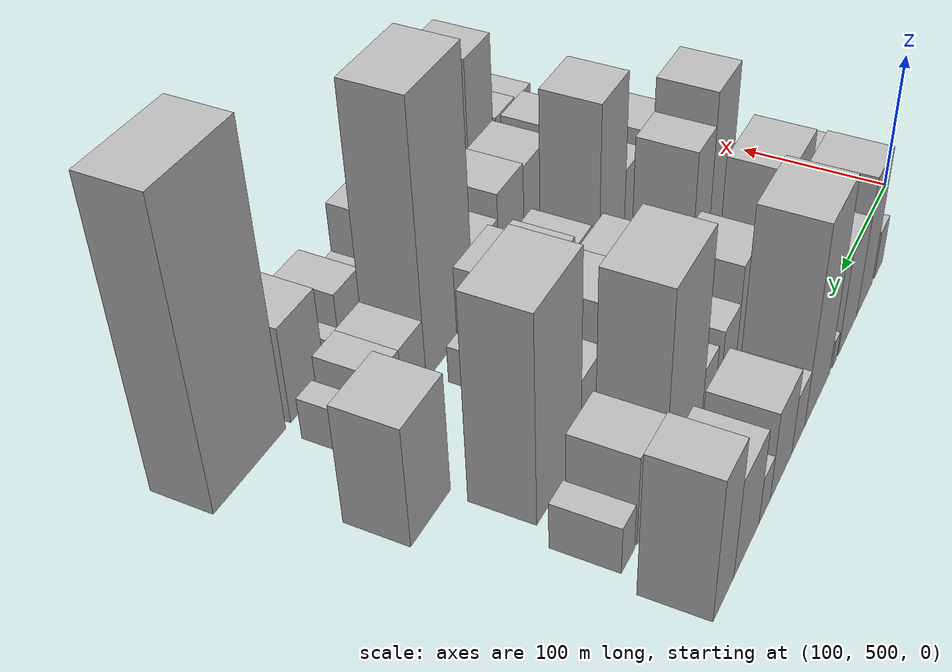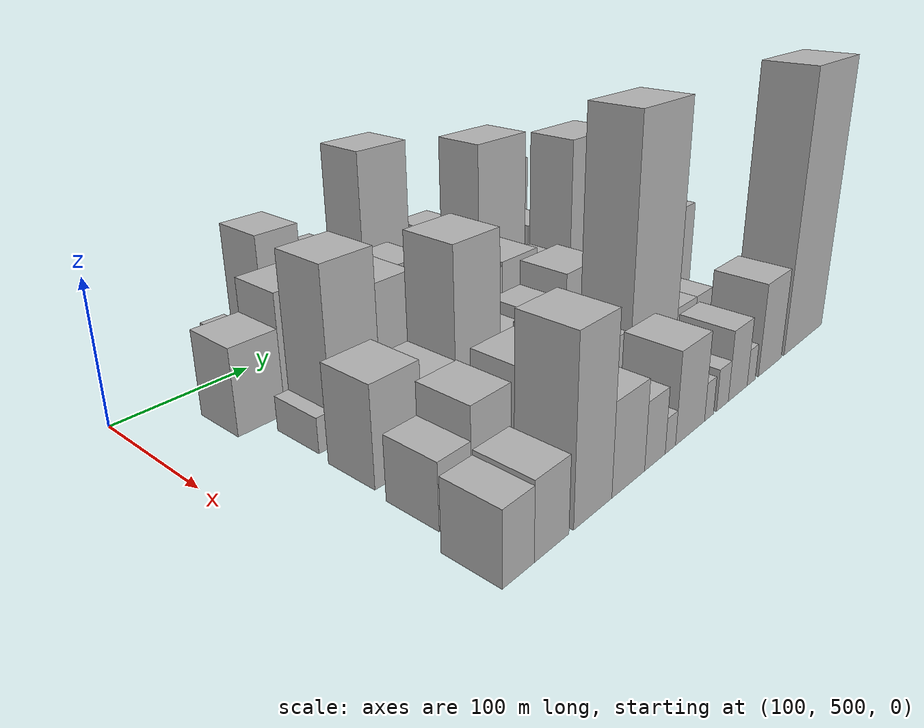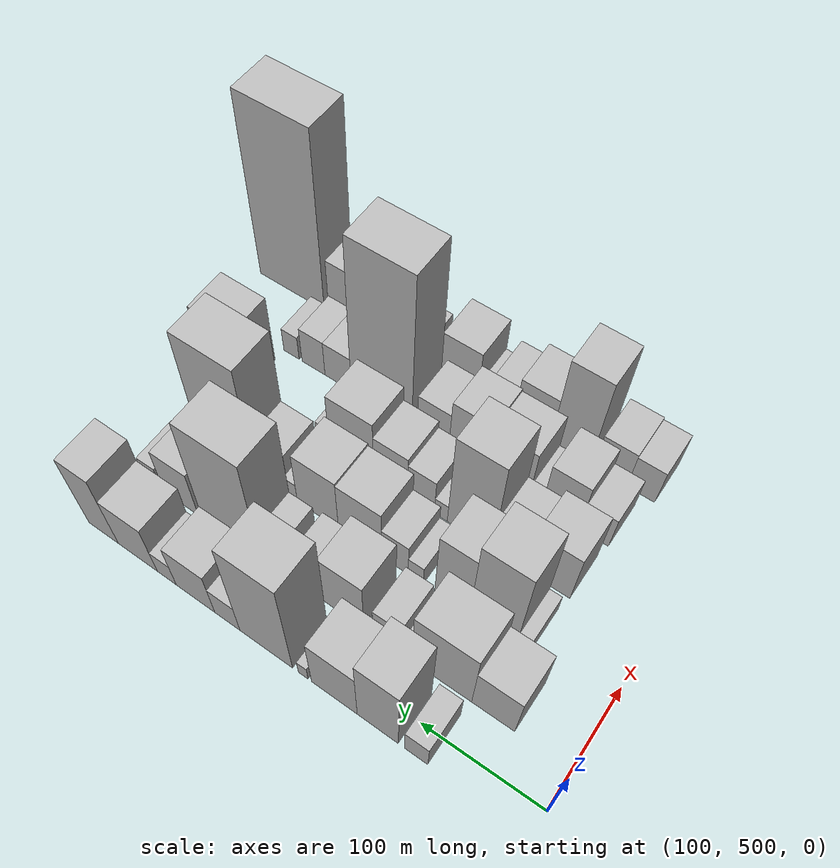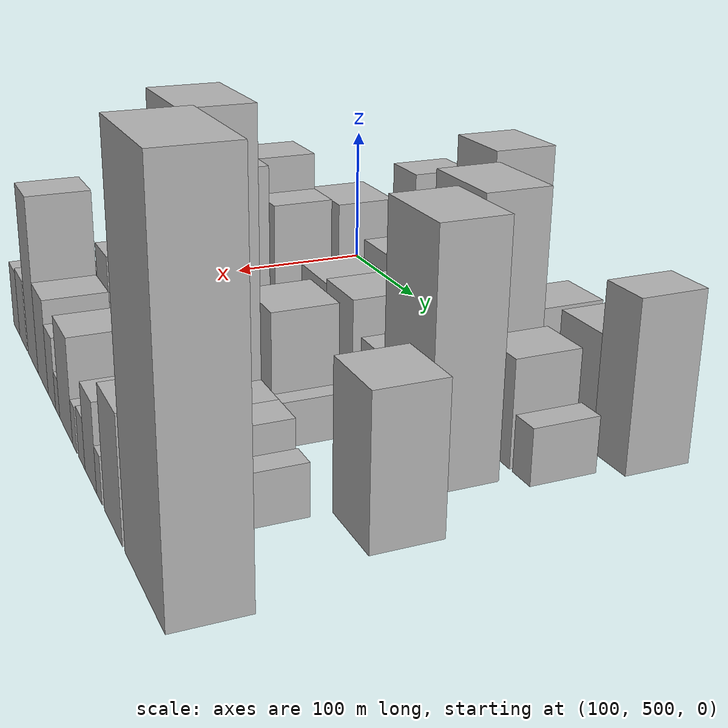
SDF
<sdf version="1.6">
 <world name="default">
  <model name="building_44">
   <static>1</static>
   <pose>100.0000 590.0059 0 0.000000 0.000000 0.000000</pose>
   <link name="link">
    <pose>0 0 18.00 0 0 0</pose>
    <collision name="collision"><geometry><box><size>40.0000 18.9711 36.0000</size></box></geometry></collision>
    <visual name="visual">
     <cast_shadows>0</cast_shadows>
     <geometry><box><size>40.0000 18.9711 36.0000</size></box></geometry>
     <material>
      <script>
       <uri>model://HANNAS_wall/materials/scripts</uri>
       <uri>model://HANNAS_wall/materials/textures</uri>
       <name>vrc/HANNAS_wall</name>
      </script>
     </material>
    </visual>
   </link>
  </model>
  <model name="building_45">
   <static>1</static>
   <pose>100.0000 621.5701 0 0.000000 0.000000 0.000000</pose>
   <link name="link">
    <pose>0 0 51.00 0 0 0</pose>
    <collision name="collision"><geometry><box><size>40.0000 34.1574 102.0000</size></box></geometry></collision>
    <visual name="visual">
     <cast_shadows>0</cast_shadows>
     <geometry><box><size>40.0000 34.1574 102.0000</size></box></geometry>
     <material>
      <script>
       <uri>model://HANNAS_wall/materials/scripts</uri>
       <uri>model://HANNAS_wall/materials/textures</uri>
       <name>vrc/HANNAS_wall</name>
      </script>
     </material>
    </visual>
   </link>
  </model>
  <model name="building_46">
   <static>1</static>
   <pose>100.0000 658.1982 0 0.000000 0.000000 0.000000</pose>
   <link name="link">
    <pose>0 0 37.50 0 0 0</pose>
    <collision name="collision"><geometry><box><size>40.0000 39.0986 75.0000</size></box></geometry></collision>
    <visual name="visual">
     <cast_shadows>0</cast_shadows>
     <geometry><box><size>40.0000 39.0986 75.0000</size></box></geometry>
     <material>
      <script>
       <uri>model://HANNAS_wall/materials/scripts</uri>
       <uri>model://HANNAS_wall/materials/textures</uri>
       <name>vrc/HANNAS_wall</name>
      </script>
     </material>
    </visual>
   </link>
  </model>
  <model name="building_47">
   <static>1</static>
   <pose>100.0000 685.0311 0 0.000000 0.000000 0.000000</pose>
   <link name="link">
    <pose>0 0 10.50 0 0 0</pose>
    <collision name="collision"><geometry><box><size>40.0000 8.5673 21.0000</size></box></geometry></collision>
    <visual name="visual">
     <cast_shadows>0</cast_shadows>
     <geometry><box><size>40.0000 8.5673 21.0000</size></box></geometry>
     <material>
      <script>
       <uri>model://HANNAS_wall/materials/scripts</uri>
       <uri>model://HANNAS_wall/materials/textures</uri>
       <name>vrc/HANNAS_wall</name>
      </script>
     </material>
    </visual>
   </link>
  </model>
  <model name="building_48">
   <static>1</static>
   <pose>100.0000 718.0292 0 0.000000 0.000000 0.000000</pose>
   <link name="link">
    <pose>0 0 70.50 0 0 0</pose>
    <collision name="collision"><geometry><box><size>40.0000 47.4289 141.0000</size></box></geometry></collision>
    <visual name="visual">
     <cast_shadows>0</cast_shadows>
     <geometry><box><size>40.0000 47.4289 141.0000</size></box></geometry>
     <material>
      <script>
       <uri>model://HANNAS_wall/materials/scripts</uri>
       <uri>model://HANNAS_wall/materials/textures</uri>
       <name>vrc/HANNAS_wall</name>
      </script>
     </material>
    </visual>
   </link>
  </model>
  <model name="building_49">
   <static>1</static>
   <pose>100.0000 753.3840 0 0.000000 0.000000 0.000000</pose>
   <link name="link">
    <pose>0 0 21.00 0 0 0</pose>
    <collision name="collision"><geometry><box><size>40.0000 23.2806 42.0000</size></box></geometry></collision>
    <visual name="visual">
     <cast_shadows>0</cast_shadows>
     <geometry><box><size>40.0000 23.2806 42.0000</size></box></geometry>
     <material>
      <script>
       <uri>model://HANNAS_wall/materials/scripts</uri>
       <uri>model://HANNAS_wall/materials/textures</uri>
       <name>vrc/HANNAS_wall</name>
      </script>
     </material>
    </visual>
   </link>
  </model>
  <model name="building_50">
   <static>1</static>
   <pose>100.0000 783.2074 0 0.000000 0.000000 0.000000</pose>
   <link name="link">
    <pose>0 0 31.50 0 0 0</pose>
    <collision name="collision"><geometry><box><size>40.0000 36.3662 63.0000</size></box></geometry></collision>
    <visual name="visual">
     <cast_shadows>0</cast_shadows>
     <geometry><box><size>40.0000 36.3662 63.0000</size></box></geometry>
     <material>
      <script>
       <uri>model://HANNAS_wall/materials/scripts</uri>
       <uri>model://HANNAS_wall/materials/textures</uri>
       <name>vrc/HANNAS_wall</name>
      </script>
     </material>
    </visual>
   </link>
  </model>
  <model name="building_51">
   <static>1</static>
   <pose>100.0000 810.5453 0 0.000000 0.000000 0.000000</pose>
   <link name="link">
    <pose>0 0 16.50 0 0 0</pose>
    <collision name="collision"><geometry><box><size>40.0000 18.3096 33.0000</size></box></geometry></collision>
    <visual name="visual">
     <cast_shadows>0</cast_shadows>
     <geometry><box><size>40.0000 18.3096 33.0000</size></box></geometry>
     <material>
      <script>
       <uri>model://HANNAS_wall/materials/scripts</uri>
       <uri>model://HANNAS_wall/materials/textures</uri>
       <name>vrc/HANNAS_wall</name>
      </script>
     </material>
    </visual>
   </link>
  </model>
  <model name="building_52">
   <static>1</static>
   <pose>100.0000 838.9012 0 0.000000 0.000000 0.000000</pose>
   <link name="link">
    <pose>0 0 34.50 0 0 0</pose>
    <collision name="collision"><geometry><box><size>40.0000 38.4023 69.0000</size></box></geometry></collision>
    <visual name="visual">
     <cast_shadows>0</cast_shadows>
     <geometry><box><size>40.0000 38.4023 69.0000</size></box></geometry>
     <material>
      <script>
       <uri>model://HANNAS_wall/materials/scripts</uri>
       <uri>model://HANNAS_wall/materials/textures</uri>
       <name>vrc/HANNAS_wall</name>
      </script>
     </material>
    </visual>
   </link>
  </model>
  <model name="building_53">
   <static>1</static>
   <pose>100.0000 873.0627 0 0.000000 0.000000 0.000000</pose>
   <link name="link">
    <pose>0 0 49.50 0 0 0</pose>
    <collision name="collision"><geometry><box><size>40.0000 29.9206 99.0000</size></box></geometry></collision>
    <visual name="visual">
     <cast_shadows>0</cast_shadows>
     <geometry><box><size>40.0000 29.9206 99.0000</size></box></geometry>
     <material>
      <script>
       <uri>model://HANNAS_wall/materials/scripts</uri>
       <uri>model://HANNAS_wall/materials/textures</uri>
       <name>vrc/HANNAS_wall</name>
      </script>
     </material>
    </visual>
   </link>
  </model>
  <model name="building_91">
   <static>1</static>
   <pose>152.0000 561.9713 0 0.000000 0.000000 0.000000</pose>
   <link name="link">
    <pose>0 0 30.00 0 0 0</pose>
    <collision name="collision"><geometry><box><size>40.0000 34.7701 60.0000</size></box></geometry></collision>
    <visual name="visual">
     <cast_shadows>0</cast_shadows>
     <geometry><box><size>40.0000 34.7701 60.0000</size></box></geometry>
     <material>
      <script>
       <uri>model://HANNAS_wall/materials/scripts</uri>
       <uri>model://HANNAS_wall/materials/textures</uri>
       <name>vrc/HANNAS_wall</name>
      </script>
     </material>
    </visual>
   </link>
  </model>
  <model name="building_92">
   <static>1</static>
   <pose>152.0000 604.2930 0 0.000000 0.000000 0.000000</pose>
   <link name="link">
    <pose>0 0 42.00 0 0 0</pose>
    <collision name="collision"><geometry><box><size>40.0000 49.8733 84.0000</size></box></geometry></collision>
    <visual name="visual">
     <cast_shadows>0</cast_shadows>
     <geometry><box><size>40.0000 49.8733 84.0000</size></box></geometry>
     <material>
      <script>
       <uri>model://HANNAS_wall/materials/scripts</uri>
       <uri>model://HANNAS_wall/materials/textures</uri>
       <name>vrc/HANNAS_wall</name>
      </script>
     </material>
    </visual>
   </link>
  </model>
  <model name="building_93">
   <static>1</static>
   <pose>152.0000 634.2186 0 0.000000 0.000000 0.000000</pose>
   <link name="link">
    <pose>0 0 10.50 0 0 0</pose>
    <collision name="collision"><geometry><box><size>40.0000 9.9779 21.0000</size></box></geometry></collision>
    <visual name="visual">
     <cast_shadows>0</cast_shadows>
     <geometry><box><size>40.0000 9.9779 21.0000</size></box></geometry>
     <material>
      <script>
       <uri>model://HANNAS_wall/materials/scripts</uri>
       <uri>model://HANNAS_wall/materials/textures</uri>
       <name>vrc/HANNAS_wall</name>
      </script>
     </material>
    </visual>
   </link>
  </model>
  <model name="building_94">
   <static>1</static>
   <pose>152.0000 650.9316 0 0.000000 0.000000 0.000000</pose>
   <link name="link">
    <pose>0 0 22.50 0 0 0</pose>
    <collision name="collision"><geometry><box><size>40.0000 23.4481 45.0000</size></box></geometry></collision>
    <visual name="visual">
     <cast_shadows>0</cast_shadows>
     <geometry><box><size>40.0000 23.4481 45.0000</size></box></geometry>
     <material>
      <script>
       <uri>model://HANNAS_wall/materials/scripts</uri>
       <uri>model://HANNAS_wall/materials/textures</uri>
       <name>vrc/HANNAS_wall</name>
      </script>
     </material>
    </visual>
   </link>
  </model>
  <model name="building_95">
   <static>1</static>
   <pose>152.0000 689.5968 0 0.000000 0.000000 0.000000</pose>
   <link name="link">
    <pose>0 0 36.00 0 0 0</pose>
    <collision name="collision"><geometry><box><size>40.0000 37.8823 72.0000</size></box></geometry></collision>
    <visual name="visual">
     <cast_shadows>0</cast_shadows>
     <geometry><box><size>40.0000 37.8823 72.0000</size></box></geometry>
     <material>
      <script>
       <uri>model://HANNAS_wall/materials/scripts</uri>
       <uri>model://HANNAS_wall/materials/textures</uri>
       <name>vrc/HANNAS_wall</name>
      </script>
     </material>
    </visual>
   </link>
  </model>
  <model name="building_96">
   <static>1</static>
   <pose>152.0000 721.5818 0 0.000000 0.000000 0.000000</pose>
   <link name="link">
    <pose>0 0 22.50 0 0 0</pose>
    <collision name="collision"><geometry><box><size>40.0000 26.0878 45.0000</size></box></geometry></collision>
    <visual name="visual">
     <cast_shadows>0</cast_shadows>
     <geometry><box><size>40.0000 26.0878 45.0000</size></box></geometry>
     <material>
      <script>
       <uri>model://HANNAS_wall/materials/scripts</uri>
       <uri>model://HANNAS_wall/materials/textures</uri>
       <name>vrc/HANNAS_wall</name>
      </script>
     </material>
    </visual>
   </link>
  </model>
  <model name="building_97">
   <static>1</static>
   <pose>152.0000 754.4091 0 0.000000 0.000000 0.000000</pose>
   <link name="link">
    <pose>0 0 21.00 0 0 0</pose>
    <collision name="collision"><geometry><box><size>40.0000 21.5667 42.0000</size></box></geometry></collision>
    <visual name="visual">
     <cast_shadows>0</cast_shadows>
     <geometry><box><size>40.0000 21.5667 42.0000</size></box></geometry>
     <material>
      <script>
       <uri>model://HANNAS_wall/materials/scripts</uri>
       <uri>model://HANNAS_wall/materials/textures</uri>
       <name>vrc/HANNAS_wall</name>
      </script>
     </material>
    </visual>
   </link>
  </model>
  <model name="building_98">
   <static>1</static>
   <pose>152.0000 793.0282 0 0.000000 0.000000 0.000000</pose>
   <link name="link">
    <pose>0 0 70.50 0 0 0</pose>
    <collision name="collision"><geometry><box><size>40.0000 55.6717 141.0000</size></box></geometry></collision>
    <visual name="visual">
     <cast_shadows>0</cast_shadows>
     <geometry><box><size>40.0000 55.6717 141.0000</size></box></geometry>
     <material>
      <script>
       <uri>model://HANNAS_wall/materials/scripts</uri>
       <uri>model://HANNAS_wall/materials/textures</uri>
       <name>vrc/HANNAS_wall</name>
      </script>
     </material>
    </visual>
   </link>
  </model>
  <model name="building_99">
   <static>1</static>
   <pose>152.0000 841.7536 0 0.000000 0.000000 0.000000</pose>
   <link name="link">
    <pose>0 0 31.50 0 0 0</pose>
    <collision name="collision"><geometry><box><size>40.0000 33.7791 63.0000</size></box></geometry></collision>
    <visual name="visual">
     <cast_shadows>0</cast_shadows>
     <geometry><box><size>40.0000 33.7791 63.0000</size></box></geometry>
     <material>
      <script>
       <uri>model://HANNAS_wall/materials/scripts</uri>
       <uri>model://HANNAS_wall/materials/textures</uri>
       <name>vrc/HANNAS_wall</name>
      </script>
     </material>
    </visual>
   </link>
  </model>
  <model name="building_100">
   <static>1</static>
   <pose>152.0000 870.3345 0 0.000000 0.000000 0.000000</pose>
   <link name="link">
    <pose>0 0 16.50 0 0 0</pose>
    <collision name="collision"><geometry><box><size>40.0000 17.3827 33.0000</size></box></geometry></collision>
    <visual name="visual">
     <cast_shadows>0</cast_shadows>
     <geometry><box><size>40.0000 17.3827 33.0000</size></box></geometry>
     <material>
      <script>
       <uri>model://HANNAS_wall/materials/scripts</uri>
       <uri>model://HANNAS_wall/materials/textures</uri>
       <name>vrc/HANNAS_wall</name>
      </script>
     </material>
    </visual>
   </link>
  </model>
  <model name="building_144">
   <static>1</static>
   <pose>204.0000 570.0960 0 0.000000 0.000000 0.000000</pose>
   <link name="link">
    <pose>0 0 12.00 0 0 0</pose>
    <collision name="collision"><geometry><box><size>40.0000 10.6019 24.0000</size></box></geometry></collision>
    <visual name="visual">
     <cast_shadows>0</cast_shadows>
     <geometry><box><size>40.0000 10.6019 24.0000</size></box></geometry>
     <material>
      <script>
       <uri>model://HANNAS_wall/materials/scripts</uri>
       <uri>model://HANNAS_wall/materials/textures</uri>
       <name>vrc/HANNAS_wall</name>
      </script>
     </material>
    </visual>
   </link>
  </model>
  <model name="building_145">
   <static>1</static>
   <pose>204.0000 595.1154 0 0.000000 0.000000 0.000000</pose>
   <link name="link">
    <pose>0 0 58.50 0 0 0</pose>
    <collision name="collision"><geometry><box><size>40.0000 39.4369 117.0000</size></box></geometry></collision>
    <visual name="visual">
     <cast_shadows>0</cast_shadows>
     <geometry><box><size>40.0000 39.4369 117.0000</size></box></geometry>
     <material>
      <script>
       <uri>model://HANNAS_wall/materials/scripts</uri>
       <uri>model://HANNAS_wall/materials/textures</uri>
       <name>vrc/HANNAS_wall</name>
      </script>
     </material>
    </visual>
   </link>
  </model>
  <model name="building_146">
   <static>1</static>
   <pose>204.0000 629.8808 0 0.000000 0.000000 0.000000</pose>
   <link name="link">
    <pose>0 0 46.50 0 0 0</pose>
    <collision name="collision"><geometry><box><size>40.0000 30.0940 93.0000</size></box></geometry></collision>
    <visual name="visual">
     <cast_shadows>0</cast_shadows>
     <geometry><box><size>40.0000 30.0940 93.0000</size></box></geometry>
     <material>
      <script>
       <uri>model://HANNAS_wall/materials/scripts</uri>
       <uri>model://HANNAS_wall/materials/textures</uri>
       <name>vrc/HANNAS_wall</name>
      </script>
     </material>
    </visual>
   </link>
  </model>
  <model name="building_147">
   <static>1</static>
   <pose>204.0000 661.6703 0 0.000000 0.000000 0.000000</pose>
   <link name="link">
    <pose>0 0 13.50 0 0 0</pose>
    <collision name="collision"><geometry><box><size>40.0000 13.4849 27.0000</size></box></geometry></collision>
    <visual name="visual">
     <cast_shadows>0</cast_shadows>
     <geometry><box><size>40.0000 13.4849 27.0000</size></box></geometry>
     <material>
      <script>
       <uri>model://HANNAS_wall/materials/scripts</uri>
       <uri>model://HANNAS_wall/materials/textures</uri>
       <name>vrc/HANNAS_wall</name>
      </script>
     </material>
    </visual>
   </link>
  </model>
  <model name="building_148">
   <static>1</static>
   <pose>204.0000 680.3113 0 0.000000 0.000000 0.000000</pose>
   <link name="link">
    <pose>0 0 22.50 0 0 0</pose>
    <collision name="collision"><geometry><box><size>40.0000 23.7973 45.0000</size></box></geometry></collision>
    <visual name="visual">
     <cast_shadows>0</cast_shadows>
     <geometry><box><size>40.0000 23.7973 45.0000</size></box></geometry>
     <material>
      <script>
       <uri>model://HANNAS_wall/materials/scripts</uri>
       <uri>model://HANNAS_wall/materials/textures</uri>
       <name>vrc/HANNAS_wall</name>
      </script>
     </material>
    </visual>
   </link>
  </model>
  <model name="building_149">
   <static>1</static>
   <pose>204.0000 711.9427 0 0.000000 0.000000 0.000000</pose>
   <link name="link">
    <pose>0 0 34.50 0 0 0</pose>
    <collision name="collision"><geometry><box><size>40.0000 39.4655 69.0000</size></box></geometry></collision>
    <visual name="visual">
     <cast_shadows>0</cast_shadows>
     <geometry><box><size>40.0000 39.4655 69.0000</size></box></geometry>
     <material>
      <script>
       <uri>model://HANNAS_wall/materials/scripts</uri>
       <uri>model://HANNAS_wall/materials/textures</uri>
       <name>vrc/HANNAS_wall</name>
      </script>
     </material>
    </visual>
   </link>
  </model>
  <model name="building_150">
   <static>1</static>
   <pose>204.0000 751.0654 0 0.000000 0.000000 0.000000</pose>
   <link name="link">
    <pose>0 0 36.00 0 0 0</pose>
    <collision name="collision"><geometry><box><size>40.0000 38.7799 72.0000</size></box></geometry></collision>
    <visual name="visual">
     <cast_shadows>0</cast_shadows>
     <geometry><box><size>40.0000 38.7799 72.0000</size></box></geometry>
     <material>
      <script>
       <uri>model://HANNAS_wall/materials/scripts</uri>
       <uri>model://HANNAS_wall/materials/textures</uri>
       <name>vrc/HANNAS_wall</name>
      </script>
     </material>
    </visual>
   </link>
  </model>
  <model name="building_151">
   <static>1</static>
   <pose>204.0000 776.1427 0 0.000000 0.000000 0.000000</pose>
   <link name="link">
    <pose>0 0 13.50 0 0 0</pose>
    <collision name="collision"><geometry><box><size>40.0000 11.3748 27.0000</size></box></geometry></collision>
    <visual name="visual">
     <cast_shadows>0</cast_shadows>
     <geometry><box><size>40.0000 11.3748 27.0000</size></box></geometry>
     <material>
      <script>
       <uri>model://HANNAS_wall/materials/scripts</uri>
       <uri>model://HANNAS_wall/materials/textures</uri>
       <name>vrc/HANNAS_wall</name>
      </script>
     </material>
    </visual>
   </link>
  </model>
  <model name="building_152">
   <static>1</static>
   <pose>204.0000 796.9236 0 0.000000 0.000000 0.000000</pose>
   <link name="link">
    <pose>0 0 27.00 0 0 0</pose>
    <collision name="collision"><geometry><box><size>40.0000 30.1870 54.0000</size></box></geometry></collision>
    <visual name="visual">
     <cast_shadows>0</cast_shadows>
     <geometry><box><size>40.0000 30.1870 54.0000</size></box></geometry>
     <material>
      <script>
       <uri>model://HANNAS_wall/materials/scripts</uri>
       <uri>model://HANNAS_wall/materials/textures</uri>
       <name>vrc/HANNAS_wall</name>
      </script>
     </material>
    </visual>
   </link>
  </model>
  <model name="building_153">
   <static>1</static>
   <pose>204.0000 840.0348 0 0.000000 0.000000 0.000000</pose>
   <link name="link">
    <pose>0 0 72.00 0 0 0</pose>
    <collision name="collision"><geometry><box><size>40.0000 56.0354 144.0000</size></box></geometry></collision>
    <visual name="visual">
     <cast_shadows>0</cast_shadows>
     <geometry><box><size>40.0000 56.0354 144.0000</size></box></geometry>
     <material>
      <script>
       <uri>model://HANNAS_wall/materials/scripts</uri>
       <uri>model://HANNAS_wall/materials/textures</uri>
       <name>vrc/HANNAS_wall</name>
      </script>
     </material>
    </visual>
   </link>
  </model>
  <model name="building_197">
   <static>1</static>
   <pose>256.0000 580.6620 0 0.000000 0.000000 0.000000</pose>
   <link name="link">
    <pose>0 0 33.00 0 0 0</pose>
    <collision name="collision"><geometry><box><size>40.0000 37.2073 66.0000</size></box></geometry></collision>
    <visual name="visual">
     <cast_shadows>0</cast_shadows>
     <geometry><box><size>40.0000 37.2073 66.0000</size></box></geometry>
     <material>
      <script>
       <uri>model://HANNAS_wall/materials/scripts</uri>
       <uri>model://HANNAS_wall/materials/textures</uri>
       <name>vrc/HANNAS_wall</name>
      </script>
     </material>
    </visual>
   </link>
  </model>
  <model name="building_198">
   <static>1</static>
   <pose>256.0000 613.7250 0 0.000000 0.000000 0.000000</pose>
   <link name="link">
    <pose>0 0 27.00 0 0 0</pose>
    <collision name="collision"><geometry><box><size>40.0000 28.9186 54.0000</size></box></geometry></collision>
    <visual name="visual">
     <cast_shadows>0</cast_shadows>
     <geometry><box><size>40.0000 28.9186 54.0000</size></box></geometry>
     <material>
      <script>
       <uri>model://HANNAS_wall/materials/scripts</uri>
       <uri>model://HANNAS_wall/materials/textures</uri>
       <name>vrc/HANNAS_wall</name>
      </script>
     </material>
    </visual>
   </link>
  </model>
  <model name="building_199">
   <static>1</static>
   <pose>256.0000 648.3325 0 0.000000 0.000000 0.000000</pose>
   <link name="link">
    <pose>0 0 63.00 0 0 0</pose>
    <collision name="collision"><geometry><box><size>40.0000 40.2963 126.0000</size></box></geometry></collision>
    <visual name="visual">
     <cast_shadows>0</cast_shadows>
     <geometry><box><size>40.0000 40.2963 126.0000</size></box></geometry>
     <material>
      <script>
       <uri>model://HANNAS_wall/materials/scripts</uri>
       <uri>model://HANNAS_wall/materials/textures</uri>
       <name>vrc/HANNAS_wall</name>
      </script>
     </material>
    </visual>
   </link>
  </model>
  <model name="building_200">
   <static>1</static>
   <pose>256.0000 674.3510 0 0.000000 0.000000 0.000000</pose>
   <link name="link">
    <pose>0 0 12.00 0 0 0</pose>
    <collision name="collision"><geometry><box><size>40.0000 11.7408 24.0000</size></box></geometry></collision>
    <visual name="visual">
     <cast_shadows>0</cast_shadows>
     <geometry><box><size>40.0000 11.7408 24.0000</size></box></geometry>
     <material>
      <script>
       <uri>model://HANNAS_wall/materials/scripts</uri>
       <uri>model://HANNAS_wall/materials/textures</uri>
       <name>vrc/HANNAS_wall</name>
      </script>
     </material>
    </visual>
   </link>
  </model>
  <model name="building_201">
   <static>1</static>
   <pose>256.0000 692.6751 0 0.000000 0.000000 0.000000</pose>
   <link name="link">
    <pose>0 0 24.00 0 0 0</pose>
    <collision name="collision"><geometry><box><size>40.0000 24.9073 48.0000</size></box></geometry></collision>
    <visual name="visual">
     <cast_shadows>0</cast_shadows>
     <geometry><box><size>40.0000 24.9073 48.0000</size></box></geometry>
     <material>
      <script>
       <uri>model://HANNAS_wall/materials/scripts</uri>
       <uri>model://HANNAS_wall/materials/textures</uri>
       <name>vrc/HANNAS_wall</name>
      </script>
     </material>
    </visual>
   </link>
  </model>
  <model name="building_202">
   <static>1</static>
   <pose>256.0000 720.9327 0 0.000000 0.000000 0.000000</pose>
   <link name="link">
    <pose>0 0 28.50 0 0 0</pose>
    <collision name="collision"><geometry><box><size>40.0000 31.6078 57.0000</size></box></geometry></collision>
    <visual name="visual">
     <cast_shadows>0</cast_shadows>
     <geometry><box><size>40.0000 31.6078 57.0000</size></box></geometry>
     <material>
      <script>
       <uri>model://HANNAS_wall/materials/scripts</uri>
       <uri>model://HANNAS_wall/materials/textures</uri>
       <name>vrc/HANNAS_wall</name>
      </script>
     </material>
    </visual>
   </link>
  </model>
  <model name="building_203">
   <static>1</static>
   <pose>256.0000 757.9231 0 0.000000 0.000000 0.000000</pose>
   <link name="link">
    <pose>0 0 37.50 0 0 0</pose>
    <collision name="collision"><geometry><box><size>40.0000 42.3729 75.0000</size></box></geometry></collision>
    <visual name="visual">
     <cast_shadows>0</cast_shadows>
     <geometry><box><size>40.0000 42.3729 75.0000</size></box></geometry>
     <material>
      <script>
       <uri>model://HANNAS_wall/materials/scripts</uri>
       <uri>model://HANNAS_wall/materials/textures</uri>
       <name>vrc/HANNAS_wall</name>
      </script>
     </material>
    </visual>
   </link>
  </model>
  <model name="building_204">
   <static>1</static>
   <pose>256.0000 785.3621 0 0.000000 0.000000 0.000000</pose>
   <link name="link">
    <pose>0 0 13.50 0 0 0</pose>
    <collision name="collision"><geometry><box><size>40.0000 12.5051 27.0000</size></box></geometry></collision>
    <visual name="visual">
     <cast_shadows>0</cast_shadows>
     <geometry><box><size>40.0000 12.5051 27.0000</size></box></geometry>
     <material>
      <script>
       <uri>model://HANNAS_wall/materials/scripts</uri>
       <uri>model://HANNAS_wall/materials/textures</uri>
       <name>vrc/HANNAS_wall</name>
      </script>
     </material>
    </visual>
   </link>
  </model>
  <model name="building_205">
   <static>1</static>
   <pose>256.0000 886.3407 0 0.000000 0.000000 0.000000</pose>
   <link name="link">
    <pose>0 0 42.00 0 0 0</pose>
    <collision name="collision"><geometry><box><size>40.0000 43.1507 84.0000</size></box></geometry></collision>
    <visual name="visual">
     <cast_shadows>0</cast_shadows>
     <geometry><box><size>40.0000 43.1507 84.0000</size></box></geometry>
     <material>
      <script>
       <uri>model://HANNAS_wall/materials/scripts</uri>
       <uri>model://HANNAS_wall/materials/textures</uri>
       <name>vrc/HANNAS_wall</name>
      </script>
     </material>
    </visual>
   </link>
  </model>
  <model name="building_244">
   <static>1</static>
   <pose>308.0000 571.8588 0 0.000000 0.000000 0.000000</pose>
   <link name="link">
    <pose>0 0 21.00 0 0 0</pose>
    <collision name="collision"><geometry><box><size>40.0000 24.9749 42.0000</size></box></geometry></collision>
    <visual name="visual">
     <cast_shadows>0</cast_shadows>
     <geometry><box><size>40.0000 24.9749 42.0000</size></box></geometry>
     <material>
      <script>
       <uri>model://HANNAS_wall/materials/scripts</uri>
       <uri>model://HANNAS_wall/materials/textures</uri>
       <name>vrc/HANNAS_wall</name>
      </script>
     </material>
    </visual>
   </link>
  </model>
  <model name="building_245">
   <static>1</static>
   <pose>308.0000 600.5626 0 0.000000 0.000000 0.000000</pose>
   <link name="link">
    <pose>0 0 31.50 0 0 0</pose>
    <collision name="collision"><geometry><box><size>40.0000 32.4328 63.0000</size></box></geometry></collision>
    <visual name="visual">
     <cast_shadows>0</cast_shadows>
     <geometry><box><size>40.0000 32.4328 63.0000</size></box></geometry>
     <material>
      <script>
       <uri>model://HANNAS_wall/materials/scripts</uri>
       <uri>model://HANNAS_wall/materials/textures</uri>
       <name>vrc/HANNAS_wall</name>
      </script>
     </material>
    </visual>
   </link>
  </model>
  <model name="building_246">
   <static>1</static>
   <pose>308.0000 622.5142 0 0.000000 0.000000 0.000000</pose>
   <link name="link">
    <pose>0 0 12.00 0 0 0</pose>
    <collision name="collision"><geometry><box><size>40.0000 11.4703 24.0000</size></box></geometry></collision>
    <visual name="visual">
     <cast_shadows>0</cast_shadows>
     <geometry><box><size>40.0000 11.4703 24.0000</size></box></geometry>
     <material>
      <script>
       <uri>model://HANNAS_wall/materials/scripts</uri>
       <uri>model://HANNAS_wall/materials/textures</uri>
       <name>vrc/HANNAS_wall</name>
      </script>
     </material>
    </visual>
   </link>
  </model>
  <model name="building_247">
   <static>1</static>
   <pose>308.0000 647.4914 0 0.000000 0.000000 0.000000</pose>
   <link name="link">
    <pose>0 0 33.00 0 0 0</pose>
    <collision name="collision"><geometry><box><size>40.0000 38.4842 66.0000</size></box></geometry></collision>
    <visual name="visual">
     <cast_shadows>0</cast_shadows>
     <geometry><box><size>40.0000 38.4842 66.0000</size></box></geometry>
     <material>
      <script>
       <uri>model://HANNAS_wall/materials/scripts</uri>
       <uri>model://HANNAS_wall/materials/textures</uri>
       <name>vrc/HANNAS_wall</name>
      </script>
     </material>
    </visual>
   </link>
  </model>
  <model name="building_248">
   <static>1</static>
   <pose>308.0000 684.2508 0 0.000000 0.000000 0.000000</pose>
   <link name="link">
    <pose>0 0 34.50 0 0 0</pose>
    <collision name="collision"><geometry><box><size>40.0000 35.0345 69.0000</size></box></geometry></collision>
    <visual name="visual">
     <cast_shadows>0</cast_shadows>
     <geometry><box><size>40.0000 35.0345 69.0000</size></box></geometry>
     <material>
      <script>
       <uri>model://HANNAS_wall/materials/scripts</uri>
       <uri>model://HANNAS_wall/materials/textures</uri>
       <name>vrc/HANNAS_wall</name>
      </script>
     </material>
    </visual>
   </link>
  </model>
  <model name="building_249">
   <static>1</static>
   <pose>308.0000 716.7480 0 0.000000 0.000000 0.000000</pose>
   <link name="link">
    <pose>0 0 25.50 0 0 0</pose>
    <collision name="collision"><geometry><box><size>40.0000 29.9600 51.0000</size></box></geometry></collision>
    <visual name="visual">
     <cast_shadows>0</cast_shadows>
     <geometry><box><size>40.0000 29.9600 51.0000</size></box></geometry>
     <material>
      <script>
       <uri>model://HANNAS_wall/materials/scripts</uri>
       <uri>model://HANNAS_wall/materials/textures</uri>
       <name>vrc/HANNAS_wall</name>
      </script>
     </material>
    </visual>
   </link>
  </model>
  <model name="building_250">
   <static>1</static>
   <pose>308.0000 766.3847 0 0.000000 0.000000 0.000000</pose>
   <link name="link">
    <pose>0 0 96.00 0 0 0</pose>
    <collision name="collision"><geometry><box><size>40.0000 59.3133 192.0000</size></box></geometry></collision>
    <visual name="visual">
     <cast_shadows>0</cast_shadows>
     <geometry><box><size>40.0000 59.3133 192.0000</size></box></geometry>
     <material>
      <script>
       <uri>model://HANNAS_wall/materials/scripts</uri>
       <uri>model://HANNAS_wall/materials/textures</uri>
       <name>vrc/HANNAS_wall</name>
      </script>
     </material>
    </visual>
   </link>
  </model>
  <model name="building_251">
   <static>1</static>
   <pose>308.0000 809.2971 0 0.000000 0.000000 0.000000</pose>
   <link name="link">
    <pose>0 0 22.50 0 0 0</pose>
    <collision name="collision"><geometry><box><size>40.0000 26.5115 45.0000</size></box></geometry></collision>
    <visual name="visual">
     <cast_shadows>0</cast_shadows>
     <geometry><box><size>40.0000 26.5115 45.0000</size></box></geometry>
     <material>
      <script>
       <uri>model://HANNAS_wall/materials/scripts</uri>
       <uri>model://HANNAS_wall/materials/textures</uri>
       <name>vrc/HANNAS_wall</name>
      </script>
     </material>
    </visual>
   </link>
  </model>
  <model name="building_252">
   <static>1</static>
   <pose>308.0000 834.3071 0 0.000000 0.000000 0.000000</pose>
   <link name="link">
    <pose>0 0 22.50 0 0 0</pose>
    <collision name="collision"><geometry><box><size>40.0000 23.5087 45.0000</size></box></geometry></collision>
    <visual name="visual">
     <cast_shadows>0</cast_shadows>
     <geometry><box><size>40.0000 23.5087 45.0000</size></box></geometry>
     <material>
      <script>
       <uri>model://HANNAS_wall/materials/scripts</uri>
       <uri>model://HANNAS_wall/materials/textures</uri>
       <name>vrc/HANNAS_wall</name>
      </script>
     </material>
    </visual>
   </link>
  </model>
  <model name="building_253">
   <static>1</static>
   <pose>308.0000 857.0394 0 0.000000 0.000000 0.000000</pose>
   <link name="link">
    <pose>0 0 15.00 0 0 0</pose>
    <collision name="collision"><geometry><box><size>40.0000 15.9558 30.0000</size></box></geometry></collision>
    <visual name="visual">
     <cast_shadows>0</cast_shadows>
     <geometry><box><size>40.0000 15.9558 30.0000</size></box></geometry>
     <material>
      <script>
       <uri>model://HANNAS_wall/materials/scripts</uri>
       <uri>model://HANNAS_wall/materials/textures</uri>
       <name>vrc/HANNAS_wall</name>
      </script>
     </material>
    </visual>
   </link>
  </model>
  <model name="building_297">
   <static>1</static>
   <pose>360.0000 560.4150 0 0.000000 0.000000 0.000000</pose>
   <link name="link">
    <pose>0 0 22.50 0 0 0</pose>
    <collision name="collision"><geometry><box><size>40.0000 24.0515 45.0000</size></box></geometry></collision>
    <visual name="visual">
     <cast_shadows>0</cast_shadows>
     <geometry><box><size>40.0000 24.0515 45.0000</size></box></geometry>
     <material>
      <script>
       <uri>model://HANNAS_wall/materials/scripts</uri>
       <uri>model://HANNAS_wall/materials/textures</uri>
       <name>vrc/HANNAS_wall</name>
      </script>
     </material>
    </visual>
   </link>
  </model>
  <model name="building_298">
   <static>1</static>
   <pose>360.0000 586.7503 0 0.000000 0.000000 0.000000</pose>
   <link name="link">
    <pose>0 0 24.00 0 0 0</pose>
    <collision name="collision"><geometry><box><size>40.0000 28.6191 48.0000</size></box></geometry></collision>
    <visual name="visual">
     <cast_shadows>0</cast_shadows>
     <geometry><box><size>40.0000 28.6191 48.0000</size></box></geometry>
     <material>
      <script>
       <uri>model://HANNAS_wall/materials/scripts</uri>
       <uri>model://HANNAS_wall/materials/textures</uri>
       <name>vrc/HANNAS_wall</name>
      </script>
     </material>
    </visual>
   </link>
  </model>
  <model name="building_299">
   <static>1</static>
   <pose>360.0000 622.6531 0 0.000000 0.000000 0.000000</pose>
   <link name="link">
    <pose>0 0 57.00 0 0 0</pose>
    <collision name="collision"><geometry><box><size>40.0000 35.1865 114.0000</size></box></geometry></collision>
    <visual name="visual">
     <cast_shadows>0</cast_shadows>
     <geometry><box><size>40.0000 35.1865 114.0000</size></box></geometry>
     <material>
      <script>
       <uri>model://HANNAS_wall/materials/scripts</uri>
       <uri>model://HANNAS_wall/materials/textures</uri>
       <name>vrc/HANNAS_wall</name>
      </script>
     </material>
    </visual>
   </link>
  </model>
  <model name="building_300">
   <static>1</static>
   <pose>360.0000 656.9577 0 0.000000 0.000000 0.000000</pose>
   <link name="link">
    <pose>0 0 30.00 0 0 0</pose>
    <collision name="collision"><geometry><box><size>40.0000 33.4226 60.0000</size></box></geometry></collision>
    <visual name="visual">
     <cast_shadows>0</cast_shadows>
     <geometry><box><size>40.0000 33.4226 60.0000</size></box></geometry>
     <material>
      <script>
       <uri>model://HANNAS_wall/materials/scripts</uri>
       <uri>model://HANNAS_wall/materials/textures</uri>
       <name>vrc/HANNAS_wall</name>
      </script>
     </material>
    </visual>
   </link>
  </model>
  <model name="building_301">
   <static>1</static>
   <pose>360.0000 685.0349 0 0.000000 0.000000 0.000000</pose>
   <link name="link">
    <pose>0 0 22.50 0 0 0</pose>
    <collision name="collision"><geometry><box><size>40.0000 22.7319 45.0000</size></box></geometry></collision>
    <visual name="visual">
     <cast_shadows>0</cast_shadows>
     <geometry><box><size>40.0000 22.7319 45.0000</size></box></geometry>
     <material>
      <script>
       <uri>model://HANNAS_wall/materials/scripts</uri>
       <uri>model://HANNAS_wall/materials/textures</uri>
       <name>vrc/HANNAS_wall</name>
      </script>
     </material>
    </visual>
   </link>
  </model>
  <model name="building_302">
   <static>1</static>
   <pose>360.0000 702.3440 0 0.000000 0.000000 0.000000</pose>
   <link name="link">
    <pose>0 0 12.00 0 0 0</pose>
    <collision name="collision"><geometry><box><size>40.0000 11.8863 24.0000</size></box></geometry></collision>
    <visual name="visual">
     <cast_shadows>0</cast_shadows>
     <geometry><box><size>40.0000 11.8863 24.0000</size></box></geometry>
     <material>
      <script>
       <uri>model://HANNAS_wall/materials/scripts</uri>
       <uri>model://HANNAS_wall/materials/textures</uri>
       <name>vrc/HANNAS_wall</name>
      </script>
     </material>
    </visual>
   </link>
  </model>
  <model name="building_303">
   <static>1</static>
   <pose>360.0000 726.1975 0 0.000000 0.000000 0.000000</pose>
   <link name="link">
    <pose>0 0 31.50 0 0 0</pose>
    <collision name="collision"><geometry><box><size>40.0000 35.8206 63.0000</size></box></geometry></collision>
    <visual name="visual">
     <cast_shadows>0</cast_shadows>
     <geometry><box><size>40.0000 35.8206 63.0000</size></box></geometry>
     <material>
      <script>
       <uri>model://HANNAS_wall/materials/scripts</uri>
       <uri>model://HANNAS_wall/materials/textures</uri>
       <name>vrc/HANNAS_wall</name>
      </script>
     </material>
    </visual>
   </link>
  </model>
  <model name="building_304">
   <static>1</static>
   <pose>360.0000 749.9460 0 0.000000 0.000000 0.000000</pose>
   <link name="link">
    <pose>0 0 13.50 0 0 0</pose>
    <collision name="collision"><geometry><box><size>40.0000 11.6763 27.0000</size></box></geometry></collision>
    <visual name="visual">
     <cast_shadows>0</cast_shadows>
     <geometry><box><size>40.0000 11.6763 27.0000</size></box></geometry>
     <material>
      <script>
       <uri>model://HANNAS_wall/materials/scripts</uri>
       <uri>model://HANNAS_wall/materials/textures</uri>
       <name>vrc/HANNAS_wall</name>
      </script>
     </material>
    </visual>
   </link>
  </model>
  <model name="building_305">
   <static>1</static>
   <pose>360.0000 767.9130 0 0.000000 0.000000 0.000000</pose>
   <link name="link">
    <pose>0 0 15.00 0 0 0</pose>
    <collision name="collision"><geometry><box><size>40.0000 16.2577 30.0000</size></box></geometry></collision>
    <visual name="visual">
     <cast_shadows>0</cast_shadows>
     <geometry><box><size>40.0000 16.2577 30.0000</size></box></geometry>
     <material>
      <script>
       <uri>model://HANNAS_wall/materials/scripts</uri>
       <uri>model://HANNAS_wall/materials/textures</uri>
       <name>vrc/HANNAS_wall</name>
      </script>
     </material>
    </visual>
   </link>
  </model>
  <model name="building_306">
   <static>1</static>
   <pose>360.0000 789.6504 0 0.000000 0.000000 0.000000</pose>
   <link name="link">
    <pose>0 0 25.50 0 0 0</pose>
    <collision name="collision"><geometry><box><size>40.0000 27.2172 51.0000</size></box></geometry></collision>
    <visual name="visual">
     <cast_shadows>0</cast_shadows>
     <geometry><box><size>40.0000 27.2172 51.0000</size></box></geometry>
     <material>
      <script>
       <uri>model://HANNAS_wall/materials/scripts</uri>
       <uri>model://HANNAS_wall/materials/textures</uri>
       <name>vrc/HANNAS_wall</name>
      </script>
     </material>
    </visual>
   </link>
  </model>
  <model name="building_307">
   <static>1</static>
   <pose>360.0000 809.3763 0 0.000000 0.000000 0.000000</pose>
   <link name="link">
    <pose>0 0 13.50 0 0 0</pose>
    <collision name="collision"><geometry><box><size>40.0000 12.2345 27.0000</size></box></geometry></collision>
    <visual name="visual">
     <cast_shadows>0</cast_shadows>
     <geometry><box><size>40.0000 12.2345 27.0000</size></box></geometry>
     <material>
      <script>
       <uri>model://HANNAS_wall/materials/scripts</uri>
       <uri>model://HANNAS_wall/materials/textures</uri>
       <name>vrc/HANNAS_wall</name>
      </script>
     </material>
    </visual>
   </link>
  </model>
  <model name="building_308">
   <static>1</static>
   <pose>360.0000 838.9464 0 0.000000 0.000000 0.000000</pose>
   <link name="link">
    <pose>0 0 34.50 0 0 0</pose>
    <collision name="collision"><geometry><box><size>40.0000 36.9058 69.0000</size></box></geometry></collision>
    <visual name="visual">
     <cast_shadows>0</cast_shadows>
     <geometry><box><size>40.0000 36.9058 69.0000</size></box></geometry>
     <material>
      <script>
       <uri>model://HANNAS_wall/materials/scripts</uri>
       <uri>model://HANNAS_wall/materials/textures</uri>
       <name>vrc/HANNAS_wall</name>
      </script>
     </material>
    </visual>
   </link>
  </model>
  <model name="building_309">
   <static>1</static>
   <pose>360.0000 896.8968 0 0.000000 0.000000 0.000000</pose>
   <link name="link">
    <pose>0 0 103.50 0 0 0</pose>
    <collision name="collision"><geometry><box><size>40.0000 68.9950 207.0000</size></box></geometry></collision>
    <visual name="visual">
     <cast_shadows>0</cast_shadows>
     <geometry><box><size>40.0000 68.9950 207.0000</size></box></geometry>
     <material>
      <script>
       <uri>model://HANNAS_wall/materials/scripts</uri>
       <uri>model://HANNAS_wall/materials/textures</uri>
       <name>vrc/HANNAS_wall</name>
      </script>
     </material>
    </visual>
   </link>
  </model>
 </world>
</sdf>
